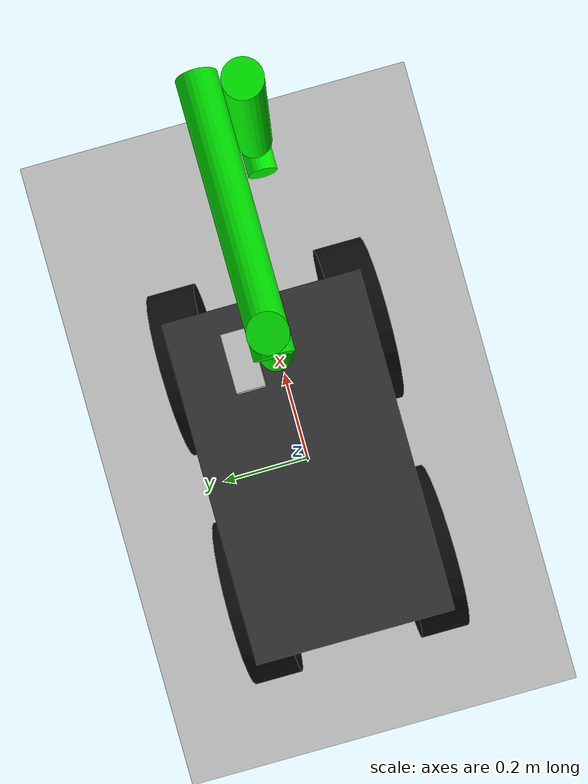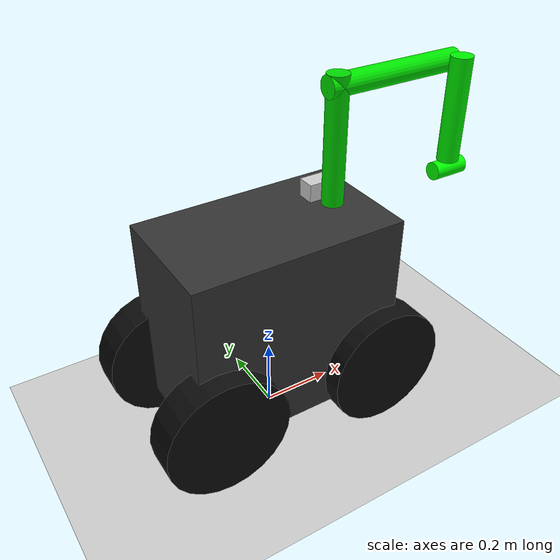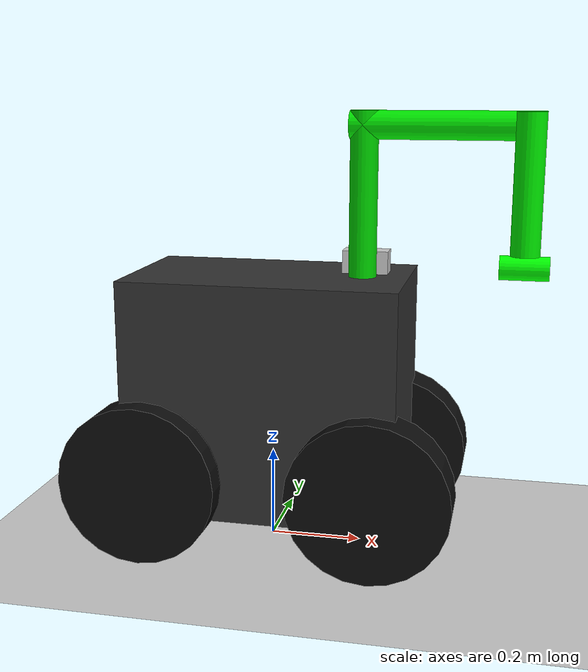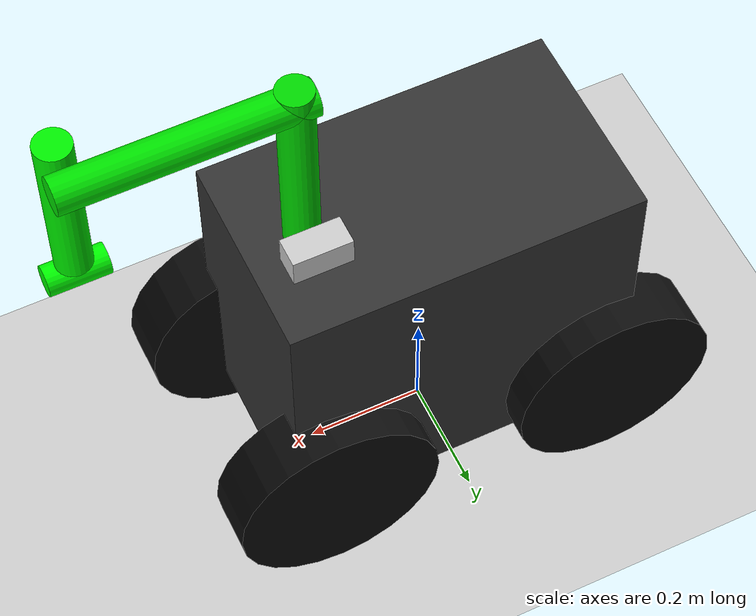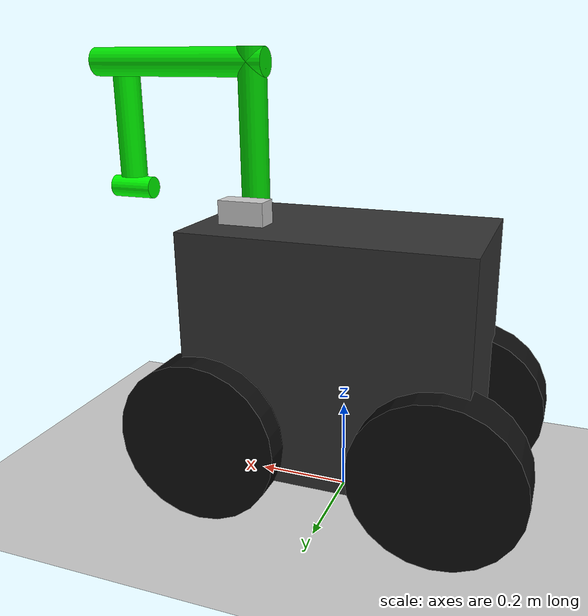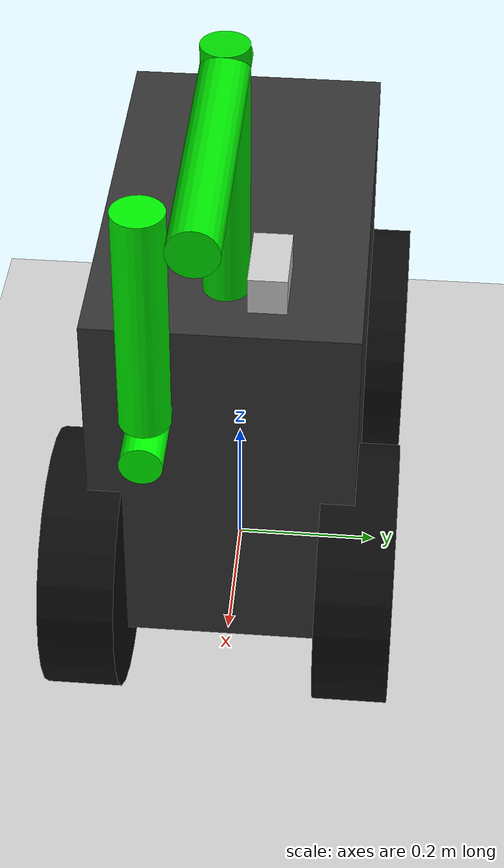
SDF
<?xml version="1.0" ?>
<sdf version="1.10">
    <world name="car_world">
        <physics name="1ms" type="ignored">
            <max_step_size>0.001</max_step_size>
            <real_time_factor>1.0</real_time_factor>
        </physics>
        <plugin filename="gz-sim-physics-system" name="gz::sim::systems::Physics" />
        <plugin filename="gz-sim-user-commands-system" name="gz::sim::systems::UserCommands" />
        <plugin filename="gz-sim-scene-broadcaster-system" name="gz::sim::systems::SceneBroadcaster" />

        <light type="directional" name="sun">
            <cast_shadows>true</cast_shadows>
            <pose>0 0 10 0 0 0</pose>
            <diffuse>0.8 0.8 0.8 1</diffuse>
            <specular>0.2 0.2 0.2 1</specular>
            <attenuation>
                <range>1000</range>
                <constant>0.9</constant>
                <linear>0.01</linear>
                <quadratic>0.001</quadratic>
            </attenuation>
            <direction>-0.5 0.1 -0.9</direction>
        </light>

        <model name="ground_plane">
            <static>true</static>
            <link name="link">
                <collision name="collision">
                    <geometry>
                        <plane>
                            <normal>0 0 1</normal>
                        </plane>
                    </geometry>
                </collision>
                <visual name="visual">
                    <geometry>
                        <plane>
                            <normal>0 0 1</normal>
                            <size>100 100</size>
                        </plane>
                    </geometry>
                    <material>
                        <ambient>0.8 0.8 0.8 1</ambient>
                        <diffuse>0.8 0.8 0.8 1</diffuse>
                        <specular>0.8 0.8 0.8 1</specular>
                    </material>
                </visual>
            </link>
        </model>

        <model name="simple_rover" canonical_link="chassis">
            <pose relative_to="world">0 0 0.35 0 0 0</pose>

            <plugin
                filename="libignition-gazebo-diff-drive-system"
                name="ignition::gazebo::systems::DiffDrive">
                <left_joint>wheel_front_left_joint</left_joint>
                <right_joint>wheel_front_right_joint</right_joint>
                <wheel_separation>0.36</wheel_separation>
                <wheel_radius>0.175</wheel_radius>
                <odom_publish_frequency>1</odom_publish_frequency>
            </plugin>

            <!-- Chassis -->
            <link name="chassis">
                <collision name="chassis_collision">
                    <geometry>
                        <box>
                            <size>0.6 0.35 0.52</size>
                        </box>
                    </geometry>
                </collision>
                <visual name="chassis_visual">
                    <geometry>
                        <box>
                            <size>0.6 0.35 0.52</size>
                        </box>
                    </geometry>
                    <material>
                        <ambient>0.2 0.2 0.2 1</ambient>
                        <diffuse>0.2 0.2 0.2 1</diffuse>
                        <specular>0.2 0.2 0.2 1</specular>
                    </material>
                </visual>
                <inertial>
                    <inertia>
                        <ixx>0.1631</ixx>
                        <iyy>0.2635</iyy>
                        <izz>0.201</izz>
                        <ixy>0.0</ixy>
                        <ixz>0.0</ixz>
                        <iyz>0.0</iyz>
                    </inertia>
                    <mass>5.0</mass>
                </inertial>
            </link>

            <!-- Wheels -->
            <link name="wheel_front_left">
                <pose>0.25 0.18 -0.175 1.5707 0 0</pose>
                <collision name="wheel_front_left_collision">
                    <geometry>
                        <cylinder>
                            <radius>0.175</radius>
                            <length>0.1</length>
                        </cylinder>
                    </geometry>
                </collision>
                <visual name="wheel_front_left_visual">
                    <geometry>
                        <cylinder>
                            <radius>0.175</radius>
                            <length>0.1</length>
                        </cylinder>
                    </geometry>
                    <material>
                        <ambient>0.05 0.05 0.05 1</ambient>
                        <diffuse>0.05 0.05 0.05 1</diffuse>
                        <specular>0.05 0.05 0.05 1</specular>
                    </material>
                </visual>
                <inertial>
                    <mass>1</mass>
                    <inertia>
                        <ixx>0.043333</ixx>
                        <ixy>0</ixy>
                        <ixz>0</ixz>
                        <iyy>0.043333</iyy>
                        <iyz>0</iyz>
                        <izz>0.08</izz>
                    </inertia>
                </inertial>
            </link>

            <link name="wheel_front_right">
                <pose>0.25 -0.18 -0.175 1.5707 0 0</pose>
                <collision name="wheel_front_right_collision">
                    <geometry>
                        <cylinder>
                            <radius>0.175</radius>
                            <length>0.1</length>
                        </cylinder>
                    </geometry>
                </collision>
                <visual name="wheel_front_right_visual">
                    <geometry>
                        <cylinder>
                            <radius>0.175</radius>
                            <length>0.1</length>
                        </cylinder>
                    </geometry>
                    <material>
                        <ambient>0.05 0.05 0.05 1</ambient>
                        <diffuse>0.05 0.05 0.05 1</diffuse>
                        <specular>0.05 0.05 0.05 1</specular>
                    </material>
                </visual>
                <inertial>
                    <mass>1</mass>
                    <inertia>
                        <ixx>0.043333</ixx>
                        <ixy>0</ixy>
                        <ixz>0</ixz>
                        <iyy>0.043333</iyy>
                        <iyz>0</iyz>
                        <izz>0.08</izz>
                    </inertia>
                </inertial>
            </link>

            <link name="wheel_back_left">
                <pose>-0.25 0.18 -0.175 1.5707 0 0</pose>
                <collision name="wheel_back_left_collision">
                    <geometry>
                        <cylinder>
                            <radius>0.175</radius>
                            <length>0.1</length>
                        </cylinder>
                    </geometry>
                </collision>
                <visual name="wheel_back_left_visual">
                    <geometry>
                        <cylinder>
                            <radius>0.175</radius>
                            <length>0.1</length>
                        </cylinder>
                    </geometry>
                    <material>
                        <ambient>0.05 0.05 0.05 1</ambient>
                        <diffuse>0.05 0.05 0.05 1</diffuse>
                        <specular>0.05 0.05 0.05 1</specular>
                    </material>
                </visual>
                <inertial>
                    <mass>1</mass>
                    <inertia>
                        <ixx>0.043333</ixx>
                        <ixy>0</ixy>
                        <ixz>0</ixz>
                        <iyy>0.043333</iyy>
                        <iyz>0</iyz>
                        <izz>0.08</izz>
                    </inertia>
                </inertial>
            </link>

            <link name="wheel_back_right">
                <pose>-0.25 -0.18 -0.175 1.5707 0 0</pose>
                <collision name="wheel_back_right_collision">
                    <geometry>
                        <cylinder>
                            <radius>0.175</radius>
                            <length>0.1</length>
                        </cylinder>
                    </geometry>
                </collision>
                <visual name="wheel_back_right_visual">
                    <geometry>
                        <cylinder>
                            <radius>0.175</radius>
                            <length>0.1</length>
                        </cylinder>
                    </geometry>
                    <material>
                        <ambient>0.05 0.05 0.05 1</ambient>
                        <diffuse>0.05 0.05 0.05 1</diffuse>
                        <specular>0.05 0.05 0.05 1</specular>
                    </material>
                </visual>
                <inertial>
                    <mass>1</mass>
                    <inertia>
                        <ixx>0.043333</ixx>
                        <ixy>0</ixy>
                        <ixz>0</ixz>
                        <iyy>0.043333</iyy>
                        <iyz>0</iyz>
                        <izz>0.08</izz>
                    </inertia>
                </inertial>
            </link>

            <!--Wheel to chassis joints-->
            <joint name="wheel_front_left_joint" type="revolute">
                <pose relative_to="wheel_front_left"/>
                <parent>chassis</parent>
                <child>wheel_front_left</child>
                    <axis>
                    <xyz expressed_in='__model__'>0 1 0</xyz>
                    <limit>
                        <lower>-1.79769e+308</lower>
                        <upper>1.79769e+308</upper>
                    </limit>
                </axis>
                <dynamics>
                    <damping> 0.3 </damping>
                    <friction> 0.3 </friction>
                </dynamics>
            </joint>

            <joint name="wheel_front_right_joint" type="revolute">
                <pose relative_to="wheel_front_right"/>
                <parent>chassis</parent>
                <child>wheel_front_right</child>
                    <axis>
                    <xyz expressed_in='__model__'>0 1 0</xyz>
                    <limit>
                        <lower>-1.79769e+308</lower>
                        <upper>1.79769e+308</upper>
                    </limit>
                </axis>
                <dynamics>
                    <damping> 0.3 </damping>
                    <friction> 0.3 </friction>
                </dynamics>
            </joint>

            <joint name="wheel_back_left_joint" type="revolute">
                <pose relative_to="wheel_back_left"/>
                <parent>chassis</parent>
                <child>wheel_back_left</child>
                    <axis>
                    <xyz expressed_in='__model__'>0 1 0</xyz>
                    <limit>
                        <lower>-1.79769e+308</lower>
                        <upper>1.79769e+308</upper>
                    </limit>
                </axis>
                <dynamics>
                    <damping> 0.3 </damping>
                    <friction> 0.3 </friction>
                </dynamics>
            </joint>

            <joint name="wheel_back_right_joint" type="revolute">
                <pose relative_to="wheel_back_right"/>
                <parent>chassis</parent>
                <child>wheel_back_right</child>
                    <axis>
                    <xyz expressed_in='__model__'>0 1 0</xyz>
                    <limit>
                        <lower>-1.79769e+308</lower>
                        <upper>1.79769e+308</upper>
                    </limit>
                </axis>
                <dynamics>
                    <damping> 0.3 </damping>
                    <friction> 0.3 </friction>
                </dynamics>
            </joint>

            <!-- Robotic Arm -->
            <link name="arm_base_rotor">
                <pose>0.2 0.055 0.285 0 0 0</pose>
                <collision name="arm_base_rotor_collision">
                    <geometry>
                        <box>
                            <size>0.1 0.05 0.05</size>
                        </box>
                    </geometry>
                </collision>
                <visual name="arm_base_rotor_visual">
                    <geometry>
                        <box>
                            <size>0.1 0.05 0.05</size>
                        </box>
                    </geometry>
                    <material>
                        <ambient>0.8 0.8 0.8 1</ambient>
                        <diffuse>0.8 0.8 0.8 1</diffuse>
                        <specular>0.8 0.8 0.8 1</specular>
                    </material>
                </visual>
                <inertial>
                    <inertia>
                        <ixx>0.0020833</ixx>
                        <iyy>0.0010417</iyy>
                        <izz>0.0010417</izz>
                        <ixy>0.0</ixy>
                        <ixz>0.0</ixz>
                        <iyz>0.0</iyz>
                    </inertia>
                    <mass> 0.2 </mass>
                </inertial>
            </link>

            <joint name="fixed_joint" type="fixed">
                <pose relative_to="arm_base_rotor"/>
                <parent>chassis</parent>
                <child>arm_base_rotor</child>
            </joint>

            <link name="arm_base">
                <pose>0.2 0 0.435 0 0 0</pose>
                <collision name="rod1_collision">
                    <pose> 0 0 0 0 0 0 </pose>
                    <geometry>
                        <cylinder>
                            <radius>0.03</radius>
                            <length>0.35</length>
                        </cylinder>
                    </geometry>
                </collision>
                <collision name="rod2_collision">
                    <pose> 0.17 0 0.145 0 1.5707 0 </pose>
                    <geometry>
                        <cylinder>
                            <radius>0.03</radius>
                            <length>0.4</length>
                        </cylinder>
                    </geometry>
                </collision>

                <visual name="rod1_visual">
                    <pose> 0 0 0 0 0 0 </pose>
                    <geometry>
                        <cylinder>
                            <radius>0.03</radius>
                            <length>0.35</length>
                        </cylinder>
                    </geometry>
                    <material>
                        <ambient>0 0.85 0 1</ambient>
                        <diffuse>0 0.85 0 1</diffuse>
                        <specular>0 0.85 0 1</specular>
                    </material>
                </visual>
                <visual name="rod2_visual">
                    <pose> 0.17 0 0.145 0 1.5707 0 </pose>
                    <geometry>
                        <cylinder>
                            <radius>0.03</radius>
                            <length>0.4</length>
                        </cylinder>
                    </geometry>
                    <material>
                        <ambient>0 0.9 0 1</ambient>
                        <diffuse>0 0.9 0 1</diffuse>
                        <specular>0 0.9 0 1</specular>
                    </material>
                </visual>

                <inertial>
                    <mass> 3.0 </mass>
                    <inertia>
                        <ixx>0.01162</ixx>
                        <iyy>0.01162</iyy>
                        <izz>0.00307</izz>
                        <ixy>0.0</ixy>
                        <ixz>0.0</ixz>
                        <iyz>0.0</iyz>
                    </inertia>
                </inertial>
            </link>

            <joint name="joint_a" type="revolute">
                <pose relative_to="arm_base_rotor"/>
                <parent>arm_base_rotor</parent>
                <child>arm_base</child>
                <axis>
                    <xyz>0 1 0</xyz>
                    <limit>
                        <lower>-1</lower>
                        <upper>1.5707</upper>
                    </limit>
                </axis>
                <dynamics>
                    <damping> 0.1 </damping>
                    <friction> 0.1 </friction>
                </dynamics>
            </joint>

            <link name="forearm">
                <pose relative_to="arm_base"> 0.34 -0.06 0.0325 0 0 0</pose>
                <collision name="forearm_collision">
                    <geometry>
                        <cylinder>
                            <radius>0.03</radius>
                            <length>0.285</length>
                        </cylinder>
                    </geometry>
                </collision>
                <visual name="forearm_visual">
                    <geometry>
                        <cylinder>
                            <radius>0.03</radius>
                            <length>0.285</length>
                        </cylinder>
                    </geometry>
                    <material>
                        <ambient>0 0.95 0 1</ambient>
                        <diffuse>0 0.95 0 1</diffuse>
                        <specular>0 0.95 0 1</specular>
                    </material>
                </visual>
                <inertial>
                    <mass>0.5</mass>
                    <inertia>
                        <ixx>0.0034</ixx>
                        <ixy>0</ixy>
                        <ixz>0</ixz>
                        <iyy>0.0034</iyy>
                        <iyz>0</iyz>
                        <izz>0.0006</izz>
                    </inertia>
                </inertial>
            </link>

            <joint name="joint_b" type="prismatic">
                <parent>arm_base</parent>
                <child>forearm</child>
                <pose> 0.34 0 0.145 0 0 0 </pose>
                <axis>
                    <xyz>0 0 1</xyz>
                    <limit>
                        <lower>0</lower>
                        <upper>0.27</upper>
                    </limit>
                </axis>
                <dynamics>
                    <damping> 0.01 </damping>
                    <friction> 0.01 </friction>
                </dynamics>
            </joint>

            <link name="gripper">
                <pose relative_to="forearm"> 0 0 -0.1675 0 1.5707 0</pose>
                <collision name="gripper_collision">
                    <geometry>
                        <cylinder>
                            <radius>0.025</radius>
                            <length>0.1</length>
                        </cylinder>
                    </geometry>
                </collision>
                <visual name="gripper_visual">
                    <geometry>
                        <cylinder>
                            <radius>0.025</radius>
                            <length>0.1</length>
                        </cylinder>
                    </geometry>
                    <material>
                        <ambient>0 1 0 1</ambient>
                        <diffuse>0 1 0 1</diffuse>
                        <specular>0 1 0 1</specular>
                    </material>
                </visual>
                <inertial>
                    <mass> 0.1 </mass>
                    <inertia>
                        <ixx>0.00049375</ixx>
                        <ixy>0</ixy>
                        <ixz>0</ixz>
                        <iyy>0.00049375</iyy>
                        <iyz>0</iyz>
                        <izz>0.00015625</izz>
                    </inertia>
                </inertial>
            </link>

            <joint name="joint_c" type="revolute">
                <pose relative_to="gripper"/>
                <parent>forearm</parent>
                <child>gripper</child>
                <axis>
                    <xyz>0 0 1</xyz>
                    <limit>
                        <lower>-1.79769e+308</lower>
                        <upper>1.79769e+308</upper>
                    </limit>
                </axis>
                <dynamics>
                    <damping> 0.01 </damping>
                    <friction> 0.01 </friction>
                </dynamics>
            </joint>

        </model>
    </world>
</sdf>
